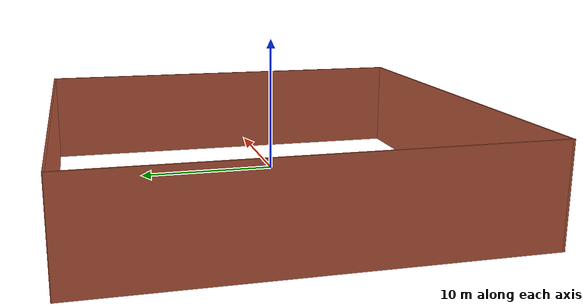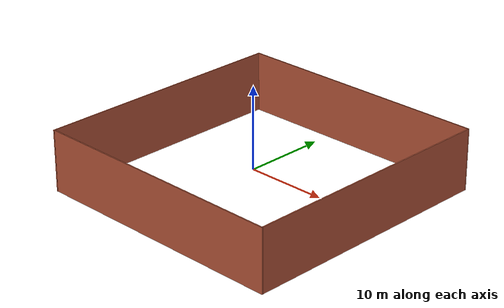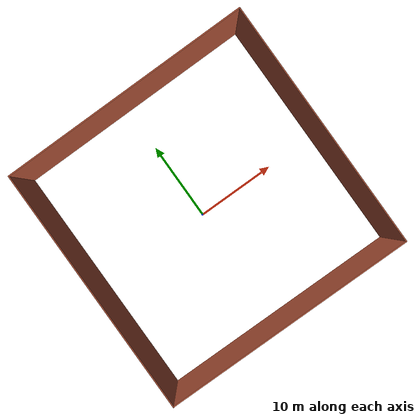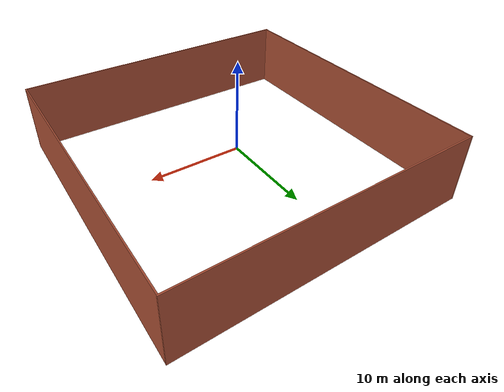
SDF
<?xml version='1.0'?>
<sdf version='1.7'>
  <model name='walls'>
    <pose>0.8465 0.325283 0 0 -0 0</pose>
    <link name='Wall_35'>
      <collision name='Wall_35_Collision'>
        <geometry>
          <box>
            <size>32.2441 0.15 7.5</size>
          </box>
        </geometry>
        <pose>0 0 1.25 0 -0 0</pose>
      </collision>
      <visual name='Wall_35_Visual'>
        <pose>0 0 1.25 0 -0 0</pose>
        <geometry>
          <box>
            <size>32.2441 0.15 7.5</size>
          </box>
        </geometry>
        <material>
          <script>
            <uri>file://media/materials/scripts/gazebo.material</uri>
            <name>Gazebo/Bricks</name>
          </script>
          <ambient>1 1 1 1</ambient>
        </material>
        <meta>
          <layer>0</layer>
        </meta>
      </visual>
      <pose>-0 16 0 0 -0 0.010128</pose>
    </link>
    <link name='Wall_41'>
      <collision name='Wall_41_Collision'>
        <geometry>
          <box>
            <size>32.25 0.15 7.5</size>
          </box>
        </geometry>
        <pose>0 0 1.25 0 -0 0</pose>
      </collision>
      <visual name='Wall_41_Visual'>
        <pose>0 0 1.25 0 -0 0</pose>
        <geometry>
          <box>
            <size>32.25 0.15 7.5</size>
          </box>
        </geometry>
        <material>
          <script>
            <uri>file://media/materials/scripts/gazebo.material</uri>
            <name>Gazebo/Bricks</name>
          </script>
          <ambient>1 1 1 1</ambient>
        </material>
        <meta>
          <layer>0</layer>
        </meta>
      </visual>
      <pose>16.0465 -0.000283 0 0 -0 -1.5708</pose>
    </link>
    <link name='Wall_43'>
      <collision name='Wall_43_Collision'>
        <geometry>
          <box>
            <size>32.2436 0.15 7.5</size>
          </box>
        </geometry>
        <pose>0 0 1.25 0 -0 0</pose>
      </collision>
      <visual name='Wall_43_Visual'>
        <pose>0 0 1.25 0 -0 0</pose>
        <geometry>
          <box>
            <size>32.2436 0.15 7.5</size>
          </box>
        </geometry>
        <material>
          <script>
            <uri>file://media/materials/scripts/gazebo.material</uri>
            <name>Gazebo/Bricks</name>
          </script>
          <ambient>1 1 1 1</ambient>
        </material>
        <meta>
          <layer>0</layer>
        </meta>
      </visual>
      <pose>-0 -16.02978 0 0 -0 3.13904</pose>
    </link>
    <link name='Wall_45'>
      <collision name='Wall_45_Collision'>
        <geometry>
          <box>
            <size>32 0.15 7.5</size>
          </box>
        </geometry>
        <pose>0 0 1.25 0 -0 0</pose>
      </collision>
      <visual name='Wall_45_Visual'>
        <pose>0 0 1.25 0 -0 0</pose>
        <geometry>
          <box>
            <size>32 0.15 7.5</size>
          </box>
        </geometry>
        <material>
          <script>
            <uri>file://media/materials/scripts/gazebo.material</uri>
            <name>Gazebo/Bricks</name>
          </script>
          <ambient>1 1 1 1</ambient>
        </material>
        <meta>
          <layer>0</layer>
        </meta>
      </visual>
      <pose>-16.0465 -0.084283 0 0 -0 1.5708</pose>
    </link>
    <static>1</static>
  </model>
</sdf>
